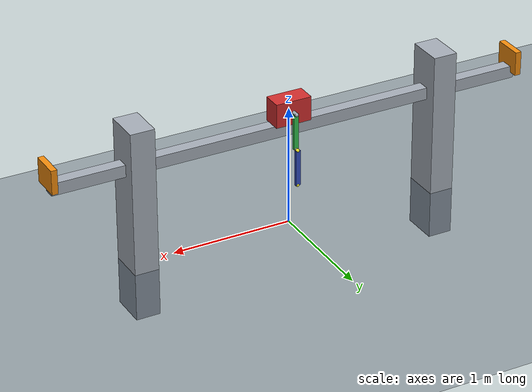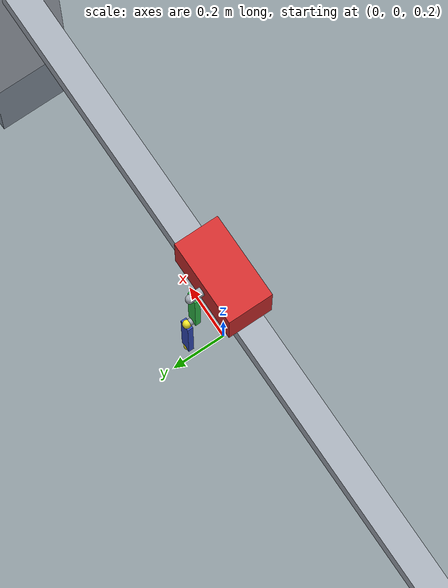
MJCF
<mujoco model="cartpole_double">
  <compiler angle="radian" autolimits="true" inertiafromgeom="false" />
  <option timestep="0.005" gravity="0 0 -9.81" integrator="RK4" />
  <default>
    <geom contype="0" conaffinity="0" />
  </default>
  <visual>
    <headlight diffuse="0.7 0.7 0.7" ambient="0.3 0.3 0.3" specular="0.1 0.1 0.1" />
    <rgba haze="0.15 0.2 0.25 1" />
  </visual>
  <asset>
    <material name="floor_mat" rgba="0.16 0.22 0.28 1" />
    <material name="metal_mat" rgba="0.65 0.68 0.72 1" />
    <material name="cart_mat" rgba="0.82 0.18 0.18 1" />
    <material name="pole1_mat" rgba="0.2 0.75 0.3 1" />
    <material name="pole2_mat" rgba="0.2 0.3 0.75 1" />
    <material name="site_mat" rgba="0.95 0.9 0.15 0.9" />
    <material name="rail_limit_mat" rgba="0.95 0.55 0.05 1" />
  </asset>
  <worldbody>
    <light diffuse="0.7 0.7 0.7" pos="0 0 3.5" dir="0 0 -1" />
    <geom name="floor" type="plane" size="5 5 0.1" material="floor_mat" />
    <body name="frame">
      <geom name="tower_left" type="box" pos="-1.3 0 0.4" size="0.1 0.15 0.8" material="metal_mat" />
      <geom name="tower_right" type="box" pos="1.3 0 0.4" size="0.1 0.15 0.8" material="metal_mat" />
      <geom name="rail" type="box" pos="0 0 0.85" size="2 0.05 0.05" material="metal_mat" />
      <geom name="rail_limit_left" type="box" pos="-2 0 0.95" size="0.025 0.12 0.1" material="rail_limit_mat" />
      <geom name="rail_limit_right" type="box" pos="2 0 0.95" size="0.025 0.12 0.1" material="rail_limit_mat" />
    </body>
    <body name="cart" pos="0 0 1">
      <joint name="cart_slide" type="slide" axis="1 0 0" frictionloss="0" damping="0.1" limited="false" />
      <inertial pos="0 0 0" mass="2" diaginertia="0.0333 0.0333 0.0333" />
      <geom name="cart_geom" type="box" size="0.15 0.08 0.1" mass="2.0" material="cart_mat" />
      <site name="cart_center_site" pos="0 0 0" size="0.02" type="sphere" material="site_mat" />
      <geom name="mount_pin" type="capsule" pos="0 0.095 0" axisangle="1 0 0 1.5708" size="0.015 0.03" material="metal_mat" />
      <body name="pole1" pos="0 0.11 0" quat="6.12323399574e-17 0 -1 0">
        <joint name="pole1_hinge" type="hinge" axis="0 -1 0" frictionloss="0" damping="0.03" ref="3.1415926535897931" limited="false" />
        <inertial pos="0 0 0.15" mass="0.5" diaginertia="0.00376666666667 0.00381666666667 8.33333333333e-05" />
        <site name="pole1_hinge_site" pos="0 0 0" size="0.015" type="sphere" material="site_mat" />
        <geom name="pole1_geom" type="box" pos="0 0 0.15" size="0.02 0.01 0.15" mass="0.5" material="pole1_mat" />
        <site name="pole1_tip_site" pos="0 0 0.3" size="0.015" type="sphere" material="site_mat" />
        <geom name="pole2_mount_pin" type="capsule" pos="0 0.015 0.3" axisangle="1 0 0 1.5708" size="0.012 0.015" material="metal_mat" />
        <body name="pole2" pos="0 0.03 0.3" quat="1 0 -0 0">
          <joint name="pole2_hinge" type="hinge" axis="0 -1 0" frictionloss="0" damping="0.03" ref="0" limited="false" />
          <inertial pos="0 0 0.15" mass="0.5" diaginertia="0.00376666666667 0.00381666666667 8.33333333333e-05" />
          <site name="pole2_hinge_site" pos="0 0 0" size="0.015" type="sphere" material="site_mat" />
          <geom name="pole2_geom" type="box" pos="0 0 0.15" size="0.02 0.01 0.15" mass="0.5" material="pole2_mat" />
          <site name="pole2_tip_site" pos="0 0 0.3" size="0.015" type="sphere" material="site_mat" />
        </body>
      </body>
    </body>
    <camera name="replay" pos="0 6 1.4" fovy="50" xyaxes="-1 0 0 0 -0.15 0.988686" />
  </worldbody>
  <sensor>
    <jointpos name="cart_position" joint="cart_slide" />
    <jointpos name="pole1_relative_angle" joint="pole1_hinge" />
    <jointpos name="pole2_relative_angle" joint="pole2_hinge" />
    <jointvel name="cart_velocity" joint="cart_slide" />
    <jointvel name="pole1_relative_velocity" joint="pole1_hinge" />
    <jointvel name="pole2_relative_velocity" joint="pole2_hinge" />
  </sensor>
  <actuator>
    <motor name="cart_motor" joint="cart_slide" gear="1" ctrlrange="-100 100" forcerange="-100 100" />
  </actuator>
</mujoco>
